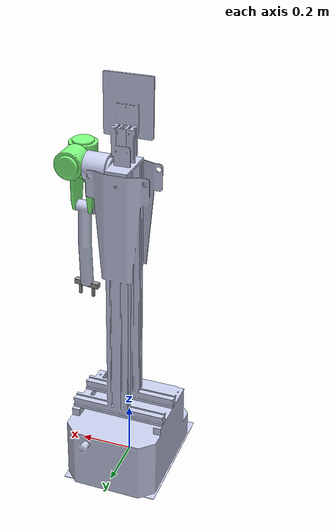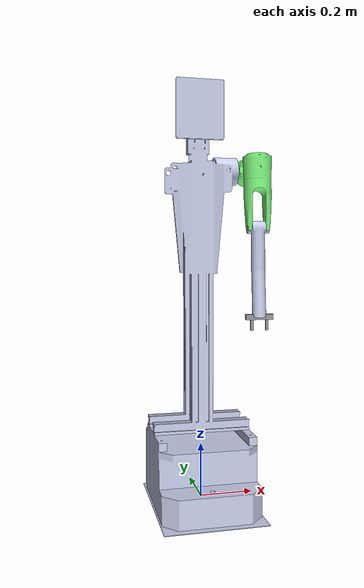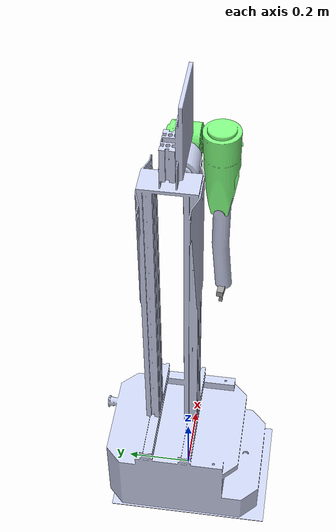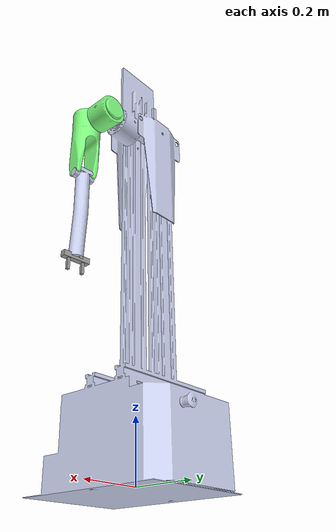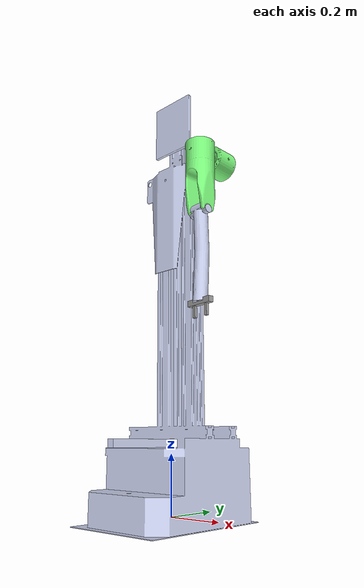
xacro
<?xml version="1.0"?>
<robot name="artbot" xmlns:xacro="http://www.ros.org/wiki/xacro">
	<xacro:include filename="$(find artbot)/urdf/artbot.urdf.xacro" />
	<xacro:include filename="$(find artbot)/urdf/macros.xacro" />
		<xacro:property name="PI" value="3.1415926535897931"/>

	<!-- Base Box -->
    <xacro:property name="base_name" value="chassis"/>
    <xacro:property name="base_box_mass" value="1.0"/>
	<xacro:property name="base_box_x" value="0.1"/>
    <xacro:property name="base_box_y" value="0.1"/>
    <xacro:property name="base_box_z" value="0.1"/>

    <!-- Wheels -->
	<xacro:property name="wheel_radius" value="${base_box_z / 4.0}"/>
    <xacro:property name="wheel_width" value="0.001"/>
    <xacro:property name="wheel_increment" value="0.010"/>
    <xacro:property name="mu1_wheel" value="0.5"/>
    <xacro:property name="mu2_wheel" value="0.5"/>
    <xacro:property name="kp_wheel" value="1000.0"/>
    <xacro:property name="kd_wheel" value="1000.0"/>

    <!--Caster Wheels-->
    <xacro:property name="dummy_length" value="0.001"/>

    <!-- Sensors -->
    <xacro:property name="sensor_mass" value="0.01"/>
    <xacro:property name="camera_box_x" value="0.02"/>
    <xacro:property name="camera_box_y" value="0.01"/>
    <xacro:property name="camera_box_z" value="0.01"/>

    <!-- Oberc Astra-->
    <xacro:property name="orbbec_astra_scale" value="1.0"/>

    <!-- RGB sensor - cam -->
    <xacro:property name="orbbec_astra_rel_rgb_px"   value="0.0" />
    <xacro:property name="orbbec_astra_rel_rgb_py"   value="-0.0125" />
    <xacro:property name="orbbec_astra_rel_rgb_pz"   value="-0.0150" />
    <!-- IR sensor - depth -->
    <xacro:property name="orbbec_astra_depth_rel_rgb_px" value="0.0" />
    <xacro:property name="orbbec_astra_depth_rel_rgb_py" value="0.0250" />
    <xacro:property name="orbbec_astra_depth_rel_rgb_pz" value="0.0" />

    <xacro:property name="M_PI" value="3.1415926535897931" />

	<!-- Gripper -->

	<xacro:property name="gripper_base_mass" value="0.01"/>
	<xacro:property name="gripper_base_x" value="0.02"/>
	<xacro:property name="gripper_base_y" value="${base_box_y}"/>
	<xacro:property name="gripper_base_z" value="0.02"/>

	<xacro:property name="gripper_finguer_mass" value="0.01"/>
	<xacro:property name="gripper_finguer_x" value="0.05"/>
	<xacro:property name="gripper_finguer_y" value="0.01"/>
	<xacro:property name="gripper_finguer_z" value="0.01"/>
	<xacro:include filename="$(find artbot)/urdf/gripper_simple.xacro" />
	<xacro:gripper parent="Link3" origin_xyz="-0.015 -0.31971 0.0066837"/>

</robot>

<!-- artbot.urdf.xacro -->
<robot xmlns:xacro="http://www.ros.org/wiki/xacro">
<link name="world" />
    <link name="base_link">

<inertial>
            <origin xyz="0.00185312215918698 0.0399913545923669 0.239493994552394" rpy="0 0 0" />
            <mass value="26.9408384150318" />
            <inertia ixx="0.786117810110698" ixy="-0.00103935700044474" ixz="-0.000371491770706058" iyy="0.577109053712677" iyz="-0.0774113755567862" izz="0.669530810421685" />
        </inertial>

        <visual>
            <origin xyz="0 0 0" rpy="0 0 0" />
            <geometry>
                <mesh filename="package://artbot/meshes/base_link.STL" />
            </geometry>
            <material name="">
                <color rgba="0.792156862745098 0.819607843137255 0.933333333333333 1" />
            </material>
        </visual>
        <collision>
            <origin xyz="0 0 0" rpy="0 0 0" />
            <geometry>
                <mesh filename="package://artbot/meshes/base_link.STL" />
            </geometry>
        </collision>
    </link>
        <joint name="virtual_joint" type="fixed">
    <parent link="world"/>
    <child link="base_link"/>
  </joint>
    <link name="Link1">

<inertial>
            <origin xyz="-0.0119499744904408 0.0588403286244772 1.28752148942368E-08" rpy="0 0 0" />
            <mass value="0.290050923059125" />
            <inertia ixx="0.000472723454898701" ixy="-1.70830969016571E-11" ixz="2.71078713429734E-11" iyy="0.000280800928472812" iyz="6.84166308081625E-08" izz="0.000288726126215457" />
        </inertial>

        <visual>
            <origin xyz="0 0 0" rpy="0 0 0" />
            <geometry>
                <mesh filename="package://artbot/meshes/Link1.STL" />
            </geometry>
            <material name="">
                <color rgba="0.501960784313725 1 0.501960784313725 1" />
            </material>
        </visual>
        <collision>
            <origin xyz="0 0 0" rpy="0 0 0" />
            <geometry>
                <mesh filename="package://artbot/meshes/Link1.STL" />
            </geometry>
        </collision>
    </link>
    <joint name="ExtampFlex" type="revolute">
        <origin xyz="0.1391 0.036717 1.2212" rpy="0.031302 -0.022783 -1.5768" />
        <parent link="base_link" />
        <child link="Link1" />
        <axis xyz="0 1 0" />
        <limit lower="-2.6" upper="2.6" effort="10.0" velocity="10.0" />
        <dynamics damping="0.7"/>
    </joint>
    <link name="Link2">

<inertial>
            <origin xyz="0.0716311847311801 -0.061317238207508 -7.84508624729341E-08" rpy="0 0 0" />
            <mass value="0.797885605068758" />
            <inertia ixx="0.00131043740788724" ixy="4.27327214932654E-10" ixz="-1.72009525676167E-10" iyy="0.00197616819943127" iyz="3.28649492760946E-05" izz="0.00168856072846654" />
        </inertial>

        <visual>
            <origin xyz="0 0 0" rpy="0 0 0" />
            <geometry>
                <mesh filename="package://artbot/meshes/Link2.STL" />
            </geometry>
            <material name="">
                <color rgba="0.501960784313725 1 0.501960784313725 1" />
            </material>
        </visual>
        <collision>
            <origin xyz="0 0 0" rpy="0 0 0" />
            <geometry>
                <mesh filename="package://artbot/meshes/Link2.STL" />
            </geometry>
        </collision>
    </link>
    <joint name="AddampAbd" type="revolute">
        <origin xyz="0.036883 0.05884 0" rpy="-3.1416 1.5506 -1.5708" />
        <parent link="Link1" />
        <child link="Link2" />
        <axis xyz="0 1 0" />
        <limit lower="-2.6" upper="2.6" effort="10.0" velocity="10.0" />
        <dynamics damping="0.7"/>
    </joint>
    <link name="Link3">

<inertial>
            <origin xyz="-0.00339642249986927 -0.138123712921605 0.00668388044107915" rpy="0 0 0" />
            <mass value="0.702719761800887" />
            <inertia ixx="0.0073957453943334" ixy="-0.000294163517279355" ixz="-1.44089041468742E-09" iyy="0.000256811014040379" iyz="-1.11302814954285E-08" izz="0.00738650565858986" />
        </inertial>

        <visual>
            <origin xyz="0 0 0" rpy="0 0 0" />
            <geometry>
                <mesh filename="package://artbot/meshes/Link3.STL" />
            </geometry>
            <material name="">
                <color rgba="0.792156862745098 0.819607843137255 0.933333333333333 1" />
            </material>
        </visual>
        <collision>
            <origin xyz="0 0 0" rpy="0 0 0" />
            <geometry>
                <mesh filename="package://artbot/meshes/Link3.STL" />
            </geometry>
        </collision>
    </link>
    <joint name="Elbow" type="revolute">
        <origin xyz="0.2232 -0.060589 -0.0066439" rpy="-0.0038812 -0.10915 1.6064" />
        <parent link="Link2" />
        <child link="Link3" />
        <axis xyz="0 0 1" />
        <limit lower="-2.6" upper="2.6" effort="10.0" velocity="10.0" />
        <dynamics damping="0.7"/>
    </joint>

<transmission name="trans_ExtampFlex">
        <type>transmission_interface/SimpleTransmission</type>
        <joint name="ExtampFlex">
            <hardwareInterface>hardware_interface/EffortJointInterface</hardwareInterface>
        </joint>
        <actuator name="ExtampFlex_motor">
            <hardwareInterface>hardware_interface/EffortJointInterface</hardwareInterface>
            <mechanicalReduction>1</mechanicalReduction>
        </actuator>
    </transmission>
    <transmission name="trans_AddampAbd">
        <type>transmission_interface/SimpleTransmission</type>
        <joint name="AddampAbd">
            <hardwareInterface>hardware_interface/EffortJointInterface</hardwareInterface>
        </joint>
        <actuator name="AddampAbd_motor">
            <hardwareInterface>hardware_interface/EffortJointInterface</hardwareInterface>
            <mechanicalReduction>1</mechanicalReduction>
        </actuator>
    </transmission>
    <transmission name="trans_Elbow">
        <type>transmission_interface/SimpleTransmission</type>
        <joint name="Elbow">
            <hardwareInterface>hardware_interface/EffortJointInterface</hardwareInterface>
        </joint>
        <actuator name="Elbow_motor">
            <hardwareInterface>hardware_interface/EffortJointInterface</hardwareInterface>
            <mechanicalReduction>1</mechanicalReduction>
        </actuator>
    </transmission>
    <gazebo>
        <plugin name="gazebo_ros_control" filename="libgazebo_ros_control.so">
            <robotNamespace>/</robotNamespace>
        </plugin>
    </gazebo>
</robot>

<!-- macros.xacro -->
<robot xmlns:xacro="http://www.ros.org/wiki/xacro">

    <xacro:macro  name="cylinder_inertia" params="mass r l">
      <inertia  ixx="${mass*(3*r*r+l*l)/12}" ixy = "0" ixz = "0"
                iyy="${mass*(3*r*r+l*l)/12}" iyz = "0"
                izz="${mass*(r*r)/2}" />
    </xacro:macro >

    <xacro:macro name="box_inertia" params="mass x y z">
      <inertia  ixx="${mass*(y*y+z*z)/12}" ixy = "0" ixz = "0"
                iyy="${mass*(x*x+z*z)/12}" iyz = "0"
                izz="${mass*(x*x+z*z)/12}"
      />
    </xacro:macro>

  <xacro:macro name="sphere_inertia" params="mass r">
    <inertia
          ixx="${2*mass*r*r/5}" ixy = "0" ixz = "0"
          iyy="${2*mass*r*r/5}" iyz = "0"
          izz="${2*mass*r*r/5}"
    />
  </xacro:macro>

</robot>

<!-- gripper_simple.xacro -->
<robot xmlns:xacro="http://www.ros.org/wiki/xacro">

    <!-- Gripper -->
    <xacro:macro  name="gripper" params="parent origin_xyz">

        <link name="gripper_base">
        <inertial>
          <mass value="${gripper_base_mass}" />
          <origin xyz="0 0 0"/>
          <xacro:box_inertia mass="${gripper_base_mass}" x="${gripper_base_x}" y="${gripper_base_y}" z="${gripper_base_z}" />
        </inertial>
        <visual>
          <geometry>
            <box size="${gripper_base_x} ${gripper_base_y} ${gripper_base_z}"/>
          </geometry>
          <material name="grey" />
        </visual>
      </link>

      <joint name="gripper_base_joint" type="prismatic">
        <origin xyz="${origin_xyz}" rpy="1.57 0 4.71"/>
        <parent link="${parent}" />
        <child link="gripper_base" />
        <axis xyz="0 0 1" />
        <limit velocity="1.0" effort="10.0" lower="${-1.0 * base_box_x / 2.0}" upper="${base_box_x / 2.0}"/>
        <dynamics friction="1" damping="1" />
      </joint>

      <transmission name="gripper_base_tr">
        <type>transmission_interface/SimpleTransmission</type>
        <joint name="gripper_base_joint">
           <hardwareInterface>hardware_interface/EffortJointInterface</hardwareInterface>
        </joint>
        <actuator name="motor_gripper_base_joint">
           <hardwareInterface>hardware_interface/EffortJointInterface</hardwareInterface>
          <mechanicalReduction>1</mechanicalReduction>
        </actuator>
      </transmission>

      <link name="gripper_l">
        <inertial>
          <mass value="${gripper_finguer_mass}" />
          <origin xyz="0 0 0"/>
          <xacro:box_inertia mass="${gripper_finguer_mass}" x="${gripper_finguer_x}" y="${gripper_finguer_y}" z="${gripper_finguer_z}" />
        </inertial>
        <visual>
          <geometry>
            <box size="${gripper_finguer_x} ${gripper_finguer_y} ${gripper_finguer_z}"/>
          </geometry>
          <material name="grey" />
        </visual>
        <collision>
          <geometry>
            <box size="${gripper_finguer_x} ${gripper_finguer_y} ${gripper_finguer_z}"/>
          </geometry>
        </collision>
      </link>

      <joint name="gripper_l_joint" type="prismatic">
        <origin xyz="${gripper_finguer_x / 2.0} 0 0" rpy="0 0 0"/>
        <parent link="gripper_base" />
        <child link="gripper_l" />
        <axis xyz="0 1 0" />
        <limit velocity="1.0" effort="10.0" lower="${gripper_finguer_y / 2.0}" upper="${gripper_base_y / 2.0}"/>
        <dynamics friction="1" damping="1" />
      </joint>

      <transmission name="gripper_l_joint_tr">
        <type>transmission_interface/SimpleTransmission</type>
        <joint name="gripper_l_joint">
           <hardwareInterface>hardware_interface/EffortJointInterface</hardwareInterface>
        </joint>
        <actuator name="gripper_l_joint">
           <hardwareInterface>hardware_interface/EffortJointInterface</hardwareInterface>
          <mechanicalReduction>1</mechanicalReduction>
        </actuator>
      </transmission>

      <link name="gripper_r">
        <inertial>
          <mass value="${gripper_finguer_mass}" />
          <origin xyz="0 0 0"/>
          <xacro:box_inertia mass="${gripper_finguer_mass}" x="${gripper_finguer_x}" y="${gripper_finguer_y}" z="${gripper_finguer_z}" />
        </inertial>
        <visual>
          <geometry>
            <box size="${gripper_finguer_x} ${gripper_finguer_y} ${gripper_finguer_z}"/>
          </geometry>
          <material name="grey" />
        </visual>
        <collision>
          <geometry>
            <box size="${gripper_finguer_x} ${gripper_finguer_y} ${gripper_finguer_z}"/>
          </geometry>
        </collision>
      </link>

      <joint name="gripper_r_joint" type="prismatic">
        <origin xyz="${gripper_finguer_x / 2.0} 0 0" rpy="0 0 0"/>
        <parent link="gripper_base" />
        <child link="gripper_r" />
        <axis xyz="0 -1 0" />
        <limit velocity="1.0" effort="10.0" lower="${gripper_finguer_y / 2.0}" upper="${gripper_base_y / 2.0}"/>
        <dynamics friction="1" damping="1" />
      </joint>

      <transmission name="gripper_r_joint_tr">
        <type>transmission_interface/SimpleTransmission</type>
        <joint name="gripper_r_joint">
           <hardwareInterface>hardware_interface/EffortJointInterface</hardwareInterface>
        </joint>
        <actuator name="gripper_r_joint">
           <hardwareInterface>hardware_interface/EffortJointInterface</hardwareInterface>
          <mechanicalReduction>1</mechanicalReduction>
        </actuator>
      </transmission>

  </xacro:macro >

</robot>
